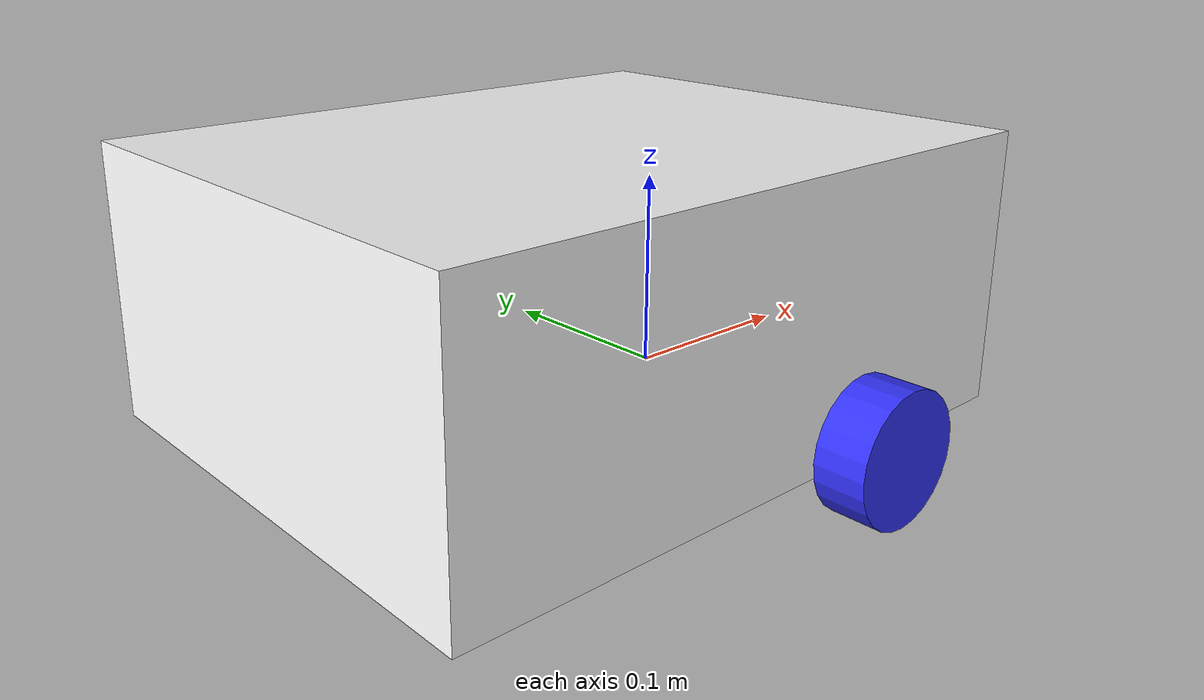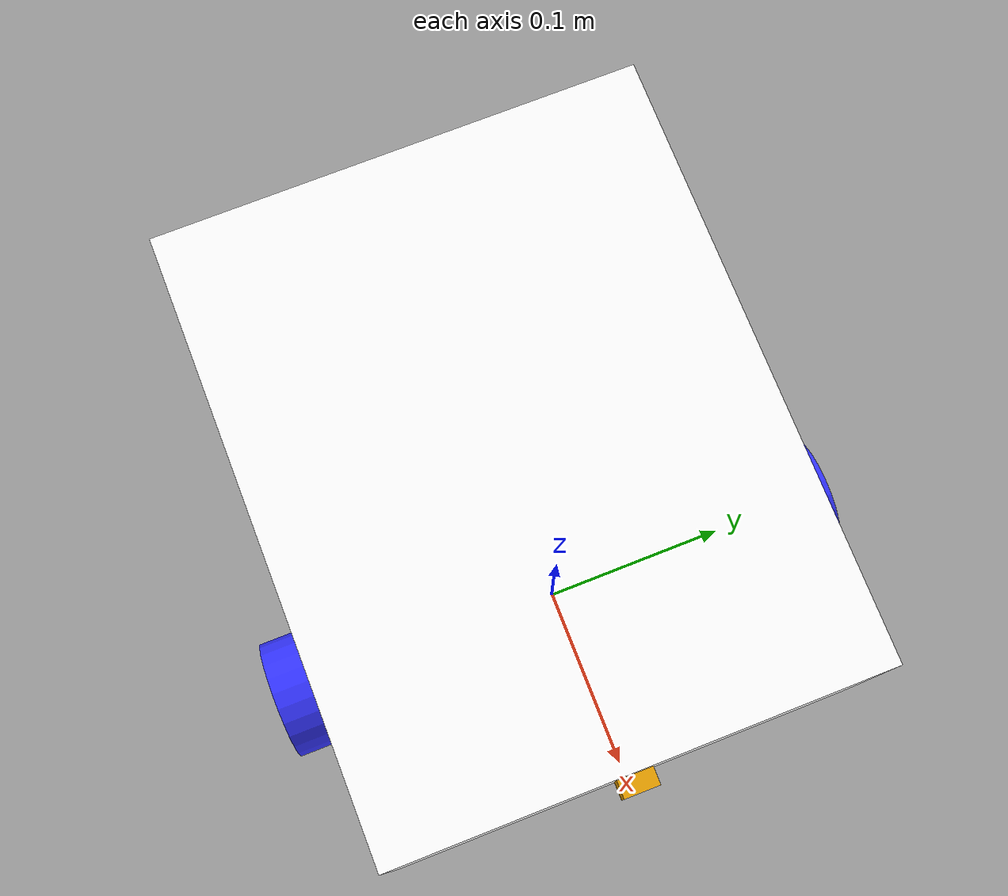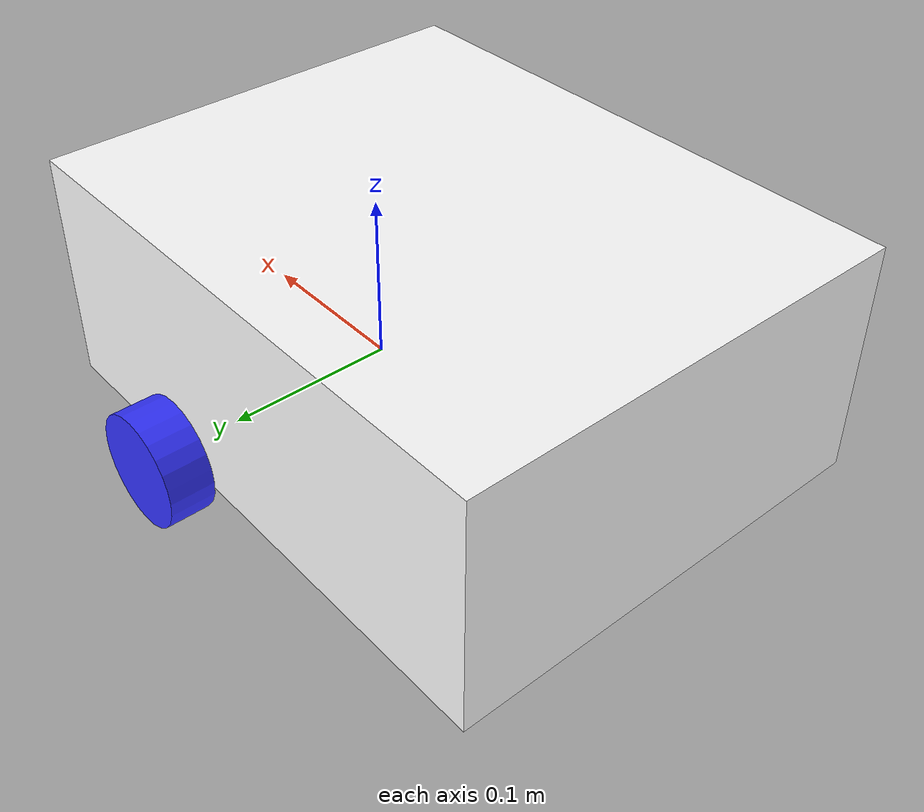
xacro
<?xml version="1.0"?>
<robot xmlns:xacro="http://www.ros.org/wiki/xacro"  name="robot">

    <xacro:include filename="robot_core.xacro" />

    <xacro:include filename="gazebo_control.xacro" />

    <xacro:include filename="depth_camera.xacro" />

    <xacro:include filename="imu.xacro" />

    <!-- origin is the position between chassis and realsense d435i -->

    <!-- Test!! -->

</robot>

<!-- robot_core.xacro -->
<robot xmlns:xacro="http://www.ros.org/wiki/xacro" >

    <xacro:include filename="inertial_macros.xacro"/>

    <xacro:property name="chassis_length" value="0.335"/>
    <xacro:property name="chassis_width" value="0.265"/>
    <xacro:property name="chassis_height" value="0.138"/>
    <xacro:property name="chassis_mass" value="5.0"/>
    <xacro:property name="wheel_radius" value="0.033"/>
    <xacro:property name="wheel_thickness" value="0.026"/>
    <xacro:property name="wheel_mass" value="1"/>
    <xacro:property name="wheel_offset_x" value="0.226"/>
    <xacro:property name="wheel_offset_y" value="0.1485"/>
    <xacro:property name="wheel_offset_z" value="0.01"/>
    <xacro:property name="caster_wheel_radius" value="0.03"/>
    <xacro:property name="caster_wheel_mass" value="3.5"/>
    <xacro:property name="caster_wheel_offset_x" value="0.075"/>
    <xacro:property name="caster_wheel_offset_z" value="${wheel_offset_z - wheel_radius + caster_wheel_radius}"/>

    <material name="white">
        <color rgba="1 1 1 1" />
    </material>

    <material name="orange">
        <color rgba="1 0.3 0.1 1"/>
    </material>

    <material name="blue">
        <color rgba="0.2 0.2 1 1"/>
    </material>

    <material name="black">
        <color rgba="0 0 0 1"/>
    </material>

    <material name="red">
        <color rgba="1 0 0 1"/>
    </material>

    <!-- BASE LINK -->

    <link name="base_link">

    </link>

    <!-- BASE_FOOTPRINT LINK -->

    <joint name="base_footprint_joint" type="fixed">
        <parent link="chassis"/>
        <child link="base_footprint"/>
        <origin xyz="0 0 0" rpy="0 0 0"/>
    </joint>

    <link name="base_footprint">
    </link>

    <!-- CHASSIS LINK -->

    <joint name="chassis_joint" type="fixed">
        <parent link="base_link"/>
        <child link="chassis"/>
        <origin xyz="${-wheel_offset_x} 0 ${-wheel_offset_z}"/>
    </joint>

    <link name="chassis">
        <visual>
            <origin xyz="${chassis_length/2} 0 ${chassis_height/2}"/>
            <geometry>
                <box size="${chassis_length} ${chassis_width} ${chassis_height}"/>
            </geometry>
            <material name="white"/>
        </visual>
        <collision>
            <origin xyz="${chassis_length/2} 0 ${chassis_height/2}"/>
            <geometry>
                <box size="${chassis_length} ${chassis_width} ${chassis_height}"/>
            </geometry>
        </collision>
        <xacro:inertial_box mass="0.5" x="${chassis_length}" y="${chassis_width}" z="${chassis_height}">
            <origin xyz="${chassis_length/2} 0 ${chassis_height/2}" rpy="0 0 0"/>
        </xacro:inertial_box>
    </link>

    <gazebo reference="chassis">
        <material>Gazebo/CeilingTiled</material>
    </gazebo>

    <!-- LEFT WHEEL LINK -->

    <joint name="left_wheel_joint" type="continuous">
        <parent link="base_link"/>
        <child link="left_wheel"/>
        <origin xyz="0 ${wheel_offset_y} 0" rpy="-${pi/2} 0 0" />
        <axis xyz="0 0 1"/>
    </joint>

    <link name="left_wheel">
        <visual>
            <geometry>
                <cylinder radius="${wheel_radius}" length="${wheel_thickness}"/>
            </geometry>
            <material name="blue"/>
        </visual>
        <collision>
            <geometry>
                <cylinder radius="${wheel_radius}" length="${wheel_thickness}"/>
            </geometry>
        </collision>
        <xacro:inertial_cylinder mass="${wheel_mass}" length="${wheel_thickness}" radius="${wheel_radius}">
            <origin xyz="0 0 0" rpy="0 0 0"/>
        </xacro:inertial_cylinder>
    </link>

    <gazebo reference="left_wheel">
        <material>Gazebo/Blue</material>
    </gazebo>

    <!-- RIGHT WHEEL LINK -->

    <joint name="right_wheel_joint" type="continuous">
        <parent link="base_link"/>
        <child link="right_wheel"/>
        <origin xyz="0 ${-wheel_offset_y} 0" rpy="${pi/2} 0 0" />
        <axis xyz="0 0 -1"/>
    </joint>

    <link name="right_wheel">
        <visual>
            <geometry>
                <cylinder radius="${wheel_radius}" length="${wheel_thickness}"/>
            </geometry>
            <material name="blue"/>
        </visual>
        <collision>
            <geometry>
                <cylinder radius="${wheel_radius}" length="${wheel_thickness}"/>
            </geometry>
        </collision>
        <xacro:inertial_cylinder mass="${wheel_mass}" length="${wheel_thickness}" radius="${wheel_radius}">
            <origin xyz="0 0 0" rpy="0 0 0"/>
        </xacro:inertial_cylinder>
    </link>

    <gazebo reference="right_wheel">
        <material>Gazebo/Blue</material>
    </gazebo>

    <!-- CASTER WHEEL LINK -->

    <joint name="caster_wheel_joint" type="fixed">
        <parent link="chassis"/>
        <child link="caster_wheel"/>
        <origin xyz="${caster_wheel_offset_x} 0 ${caster_wheel_offset_z}"/>
    </joint>

    <link name="caster_wheel">
        <visual>
            <geometry>
                <sphere radius="${caster_wheel_radius}"/>
            </geometry>
            <material name="black"/>
        </visual>
        <collision>
            <geometry>
                <sphere radius="${caster_wheel_radius}"/>
            </geometry>
        </collision>
        <xacro:inertial_sphere mass="${caster_wheel_mass}" radius="${caster_wheel_radius}">
            <origin xyz="0 0 0" rpy="0 0 0"/>
        </xacro:inertial_sphere>
    </link>

    <gazebo reference="caster_wheel">
        <material>Gazebo/Black</material>
        <mu1 value="0.001"/>
        <mu2 value="0.001"/>
    </gazebo>

</robot>

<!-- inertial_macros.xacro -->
<robot xmlns:xacro="http://www.ros.org/wiki/xacro" >
    <!-- Specify some standard inertial calculations https://en.wikipedia.org/wiki/List_of_moments_of_inertia -->
    <!-- These make use of xacro's mathematical functionality -->
    <xacro:macro name="inertial_sphere" params="mass radius *origin">
        <inertial>
            <xacro:insert_block name="origin"/>
            <mass value="${mass}" />
            <inertia ixx="${(2/5) * mass * (radius*radius)}" ixy="0.0" ixz="0.0"
                    iyy="${(2/5) * mass * (radius*radius)}" iyz="0.0"
                    izz="${(2/5) * mass * (radius*radius)}" />
        </inertial>
    </xacro:macro>
    <xacro:macro name="inertial_box" params="mass x y z *origin">
        <inertial>
            <xacro:insert_block name="origin"/>
            <mass value="${mass}" />
            <inertia ixx="${(1/12) * mass * (y*y+z*z)}" ixy="0.0" ixz="0.0"
                    iyy="${(1/12) * mass * (x*x+z*z)}" iyz="0.0"
                    izz="${(1/12) * mass * (x*x+y*y)}" />
        </inertial>
    </xacro:macro>
    <xacro:macro name="inertial_cylinder" params="mass length radius *origin">
        <inertial>
            <xacro:insert_block name="origin"/>
            <mass value="${mass}" />
            <inertia ixx="${(1/12) * mass * (3*radius*radius + length*length)}" ixy="0.0" ixz="0.0"
                    iyy="${(1/12) * mass * (3*radius*radius + length*length)}" iyz="0.0"
                    izz="${(1/2) * mass * (radius*radius)}" />
        </inertial>
    </xacro:macro>
</robot>

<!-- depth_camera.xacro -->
<robot xmlns:xacro="http://www.ros.org/wiki/xacro" >

    <joint name="camera_joint" type="fixed">
        <parent link="chassis"/>
        <child link="camera_link"/>
        <origin xyz="0.305 0 0.08" rpy="0 0 0"/>
    </joint>

    <link name="camera_link">
        <visual>
            <geometry>
                <box size="0.010 0.03 0.03"/>
            </geometry>
            <material name="red"/>
        </visual>
    </link>

    <joint name="camera_optical_joint" type="fixed">
        <parent link="camera_link"/>
        <child link="camera_link_optical"/>
        <origin xyz="0 0 0" rpy="${-pi/2} 0 ${-pi/2}"/>
    </joint>

    <link name="camera_link_optical"></link>

    <gazebo reference="camera_link">
        <material>Gazebo/Red</material>

        <sensor name="camera" type="depth">
            <pose> 0 0 0 0 0 0 </pose>
            <visualize>true</visualize>
            <update_rate>60</update_rate>
            <camera>
                <horizontal_fov>1.089</horizontal_fov>
                <image>
                    <format>B8G8R8</format>
                    <width>1280</width>
                    <height>720</height>
                </image>
                <clip>
                    <near>0.05</near>
                    <far>8.0</far>
                </clip>
            </camera>
            <plugin name="camera_controller" filename="libgazebo_ros_camera.so">
                <frame_name>camera_link_optical</frame_name>
                <min_depth>0.1</min_depth>
                <max_depth>7.0</max_depth>
            </plugin>
        </sensor>
    </gazebo>

</robot>

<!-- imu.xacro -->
<robot xmlns:xacro="http://www.ros.org/wiki/xacro" name="imu">

    <joint name="imu_sensor_joint" type="fixed">
        <axis xyz="0 0 1" />
        <origin xyz="${chassis_length} 0 ${chassis_height/2}" rpy="0 0 0"/>
        <parent link="chassis"/>
        <child link="imu_sensor_link"/>
    </joint>

    <link name="imu_sensor_link">
        <collision>
            <origin xyz="0 0 0" rpy="0 0 0"/>
            <geometry>
                <box size="0.02 0.02 0.02"/>
            </geometry>
        </collision>
        <visual>
            <origin xyz="0 0 0" rpy="0 0 0"/>
            <geometry>
                <box size="0.02 0.02 0.02"/>
            </geometry>
        </visual>
        <inertial>
            <mass value="0.001" />
            <origin xyz="0 0 0" rpy="0 0 0"/>
            <inertia ixx="0.00000015" ixy="0" ixz="0" iyy="0.00000015" iyz="0" izz="0.00000015" />
        </inertial>
    </link>

    <gazebo reference="imu_sensor_link">
        <gravity>true</gravity>
        <sensor name='imu_sensor' type='imu'>
            <always_on>1</always_on>
            <update_rate>1000</update_rate>
            <visualize>1</visualize>
            <topic>__default_topic__</topic>
            <plugin name='imu_plugin' filename='libgazebo_ros_imu_sensor.so'>
                <ros>
                    <!-- Will publish to /imu/data -->
                    <namespace>/camera</namespace>
                    <remapping>~/out:=imu</remapping>
                </ros>
                <bodyName>imu_sensor_link</bodyName>
                <updateRateHZ>10.0</updateRateHZ>
                <gaussianNoise>0.0</gaussianNoise>
                <xyzOffset>0 0 0</xyzOffset>
                <rpyOffset>0 0 0</rpyOffset>
            </plugin>
            <pose>0 0 0 0 0 0</pose>
        </sensor>
    </gazebo>

</robot>
